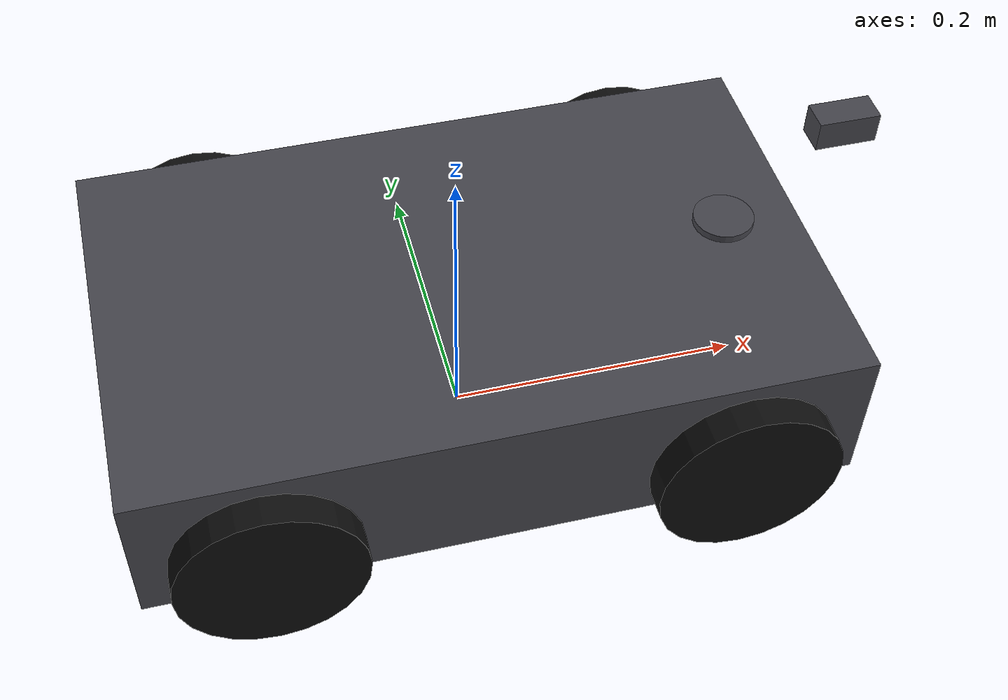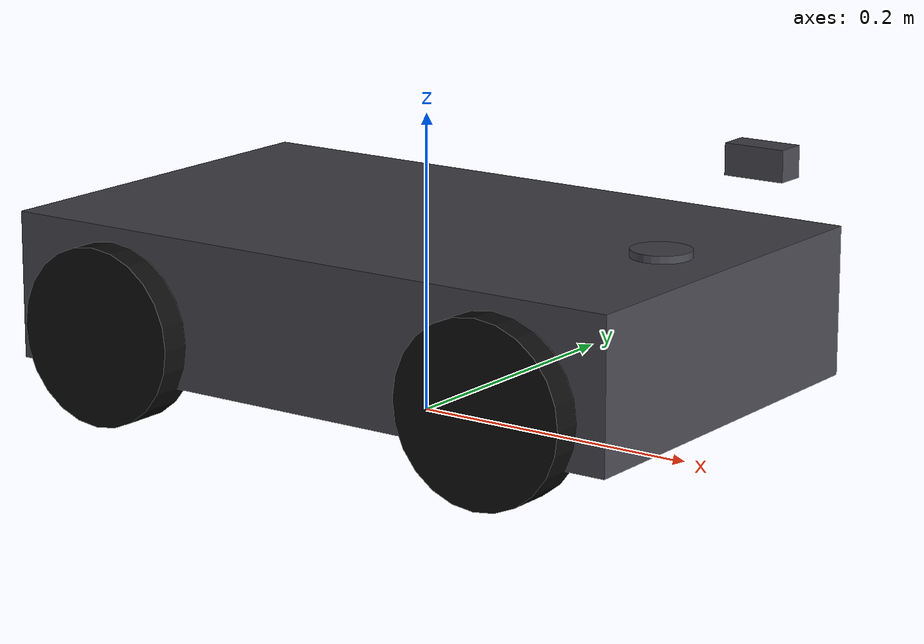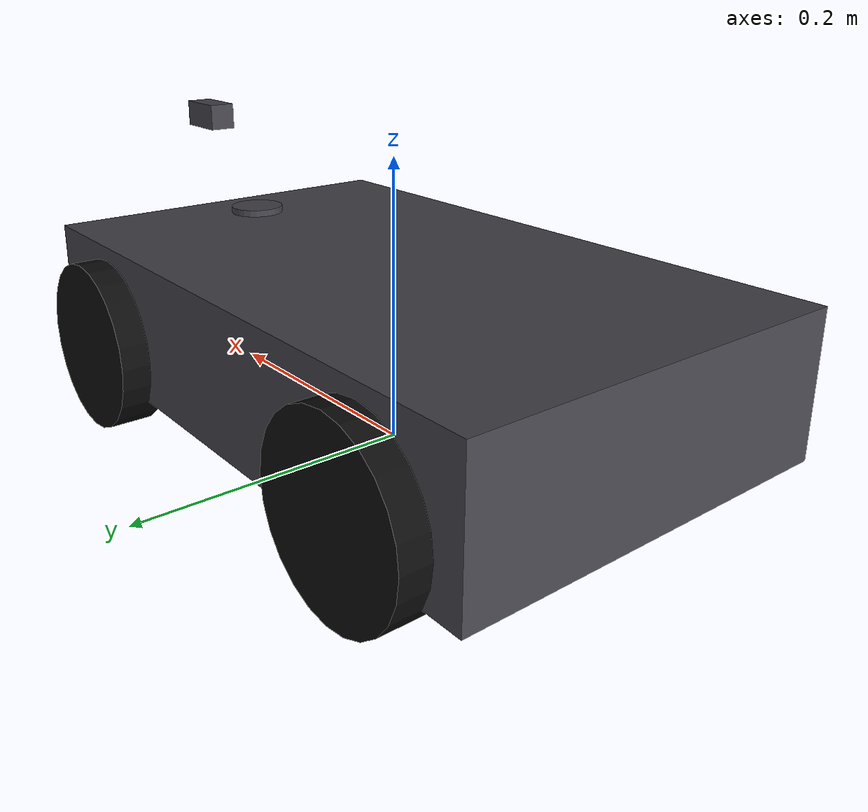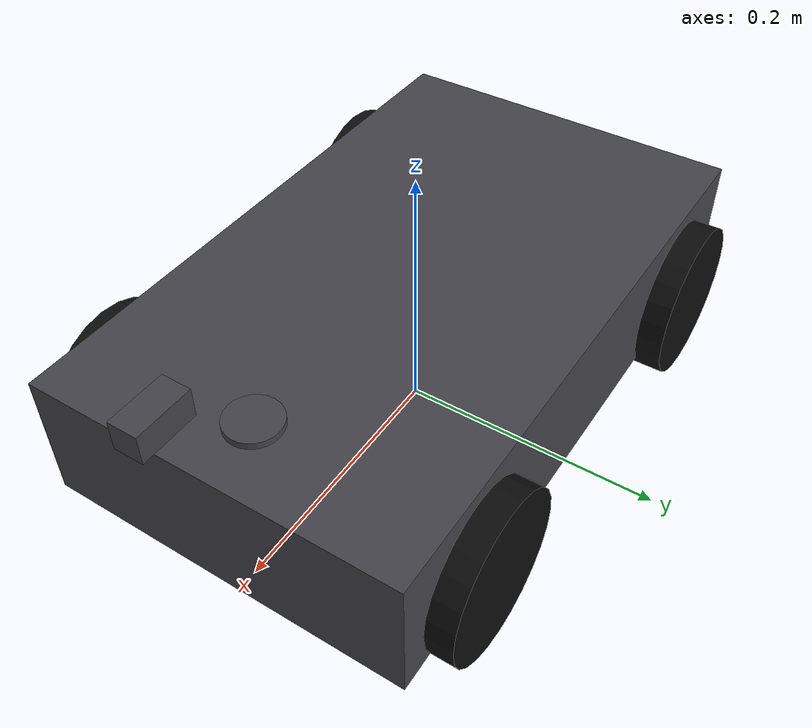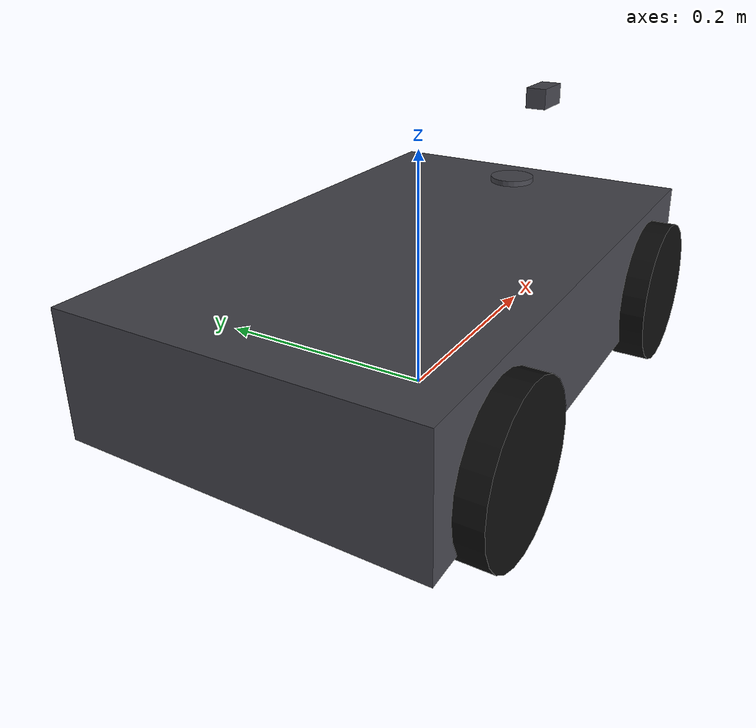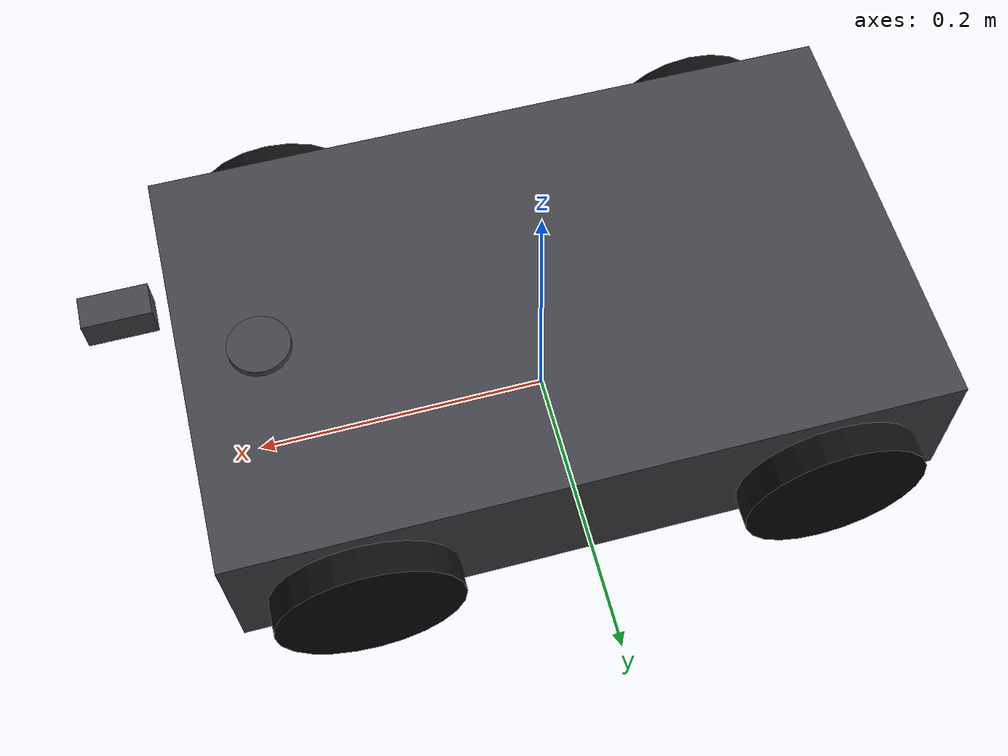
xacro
<?xml version="1.0"?>
<robot name="rc_car" xmlns:xacro="http://www.ros.org/wiki/xacro">
  <xacro:arg name="lidar_noise_std" default="0.0"/>
  <xacro:arg name="imu_gyro_noise_stddev_rps" default="0.002"/>
  <xacro:arg name="imu_accel_noise_stddev_mps2" default="0.02"/>
  <xacro:property name="lidar_noise_std" value="$(arg lidar_noise_std)"/>
  <xacro:property name="imu_gyro_noise_stddev_rps" value="$(arg imu_gyro_noise_stddev_rps)"/>
  <xacro:property name="imu_accel_noise_stddev_mps2" value="$(arg imu_accel_noise_stddev_mps2)"/>
  <!-- Basic dimensions -->
  <xacro:property name="chassis_length" value="0.46"/>
  <xacro:property name="chassis_width" value="0.28"/>
  <xacro:property name="chassis_height" value="0.10"/>
  <xacro:property name="chassis_clearance" value="0.03"/>
  <xacro:property name="wheel_radius" value="0.06"/>
  <xacro:property name="wheel_thickness" value="0.03"/>
  <xacro:property name="wheelbase_m" value="0.30"/>
  <xacro:property name="rear_axle_offset_x" value="-0.15"/>
  <xacro:property name="front_axle_offset_x" value="${rear_axle_offset_x + wheelbase_m}"/>
  <xacro:property name="steering_limit_rad" value="0.3141592654"/>
  <xacro:property name="lidar_offset_x" value="0.18"/>
  <xacro:property name="lidar_offset_z" value="0.12"/>

  <!-- Placement helpers -->
  <xacro:property name="wheel_base_x" value="${front_axle_offset_x}"/>
  <xacro:property name="wheel_track_y" value="${chassis_width / 2.0 + wheel_thickness / 2.0 - 0.01}"/>
  <xacro:property name="axle_height" value="${wheel_radius}"/>

  <!-- Mass and inertia approximations -->
  <xacro:property name="chassis_mass" value="3.0"/>
  <xacro:property name="wheel_mass" value="0.25"/>
  <xacro:property name="steer_mass" value="0.05"/>

  <xacro:property name="chassis_ixx" value="${chassis_mass / 12.0 * (chassis_height*chassis_height + chassis_width*chassis_width)}"/>
  <xacro:property name="chassis_iyy" value="${chassis_mass / 12.0 * (chassis_length*chassis_length + chassis_height*chassis_height)}"/>
  <xacro:property name="chassis_izz" value="${chassis_mass / 12.0 * (chassis_length*chassis_length + chassis_width*chassis_width)}"/>

  <xacro:property name="wheel_ixx" value="${wheel_mass / 12.0 * (3*wheel_radius*wheel_radius + wheel_thickness*wheel_thickness)}"/>
  <xacro:property name="wheel_iyy" value="${wheel_ixx}"/>
  <xacro:property name="wheel_izz" value="${0.5 * wheel_mass * wheel_radius * wheel_radius}"/>

  <!-- Materials -->
  <material name="chassis_grey">
    <color rgba="0.27 0.27 0.3 1.0"/>
  </material>
  <material name="wheel_black">
    <color rgba="0.05 0.05 0.05 1.0"/>
  </material>

  <xacro:macro name="wheel" params="name parent xyz">
    <link name="${name}">
      <inertial>
        <origin xyz="0 0 0" rpy="0 0 0"/>
        <mass value="${wheel_mass}"/>
        <inertia ixx="${wheel_ixx}" ixy="0.0" ixz="0.0" iyy="${wheel_iyy}" iyz="0.0" izz="${wheel_izz}"/>
      </inertial>
      <visual>
        <origin xyz="0 0 0" rpy="0 0 0"/>
        <geometry>
          <cylinder radius="${wheel_radius}" length="${wheel_thickness}"/>
        </geometry>
        <material name="wheel_black"/>
      </visual>
      <collision>
        <origin xyz="0 0 0" rpy="0 0 0"/>
        <geometry>
          <cylinder radius="${wheel_radius}" length="${wheel_thickness}"/>
        </geometry>
      </collision>
    </link>
    <joint name="${name}_joint" type="continuous">
      <parent link="${parent}"/>
      <child link="${name}"/>
      <origin xyz="${xyz}" rpy="1.5708 0 0"/>
      <axis xyz="0 0 -1"/>
    </joint>
    <gazebo reference="${name}">
      <mu1>1.2</mu1>
      <mu2>1.2</mu2>
      <kp>80000.0</kp>
      <kd>20.0</kd>
    </gazebo>
  </xacro:macro>

  <xacro:macro name="steered_wheel" params="name parent xyz">
    <link name="${name}_steer">
      <inertial>
        <origin xyz="0 0 0" rpy="0 0 0"/>
        <mass value="${steer_mass}"/>
        <inertia ixx="0.0002" ixy="0.0" ixz="0.0" iyy="0.0002" iyz="0.0" izz="0.0002"/>
      </inertial>
      <visual>
        <origin xyz="0 0 0" rpy="0 0 0"/>
        <geometry>
          <cylinder radius="0.01" length="0.04"/>
        </geometry>
        <material name="chassis_grey"/>
      </visual>
      <collision>
        <origin xyz="0 0 0" rpy="0 0 0"/>
        <geometry>
          <cylinder radius="0.01" length="0.04"/>
        </geometry>
      </collision>
    </link>
    <joint name="${name}_steer_joint" type="revolute">
      <parent link="${parent}"/>
      <child link="${name}_steer"/>
      <origin xyz="${xyz}" rpy="0 0 0"/>
      <axis xyz="0 0 1"/>
      <limit lower="-${steering_limit_rad}" upper="${steering_limit_rad}" effort="10.0" velocity="3.5"/>
    </joint>
    <xacro:wheel name="${name}" parent="${name}_steer" xyz="0 0 0"/>
  </xacro:macro>

  <link name="base_link">
    <inertial>
      <origin xyz="0 0 ${chassis_height / 2.0 + chassis_clearance}" rpy="0 0 0"/>
      <mass value="${chassis_mass}"/>
      <inertia ixx="${chassis_ixx}" ixy="0.0" ixz="0.0" iyy="${chassis_iyy}" iyz="0.0" izz="${chassis_izz}"/>
    </inertial>
    <visual>
      <origin xyz="0 0 ${chassis_height / 2.0 + chassis_clearance}" rpy="0 0 0"/>
      <geometry>
        <box size="${chassis_length} ${chassis_width} ${chassis_height}"/>
      </geometry>
      <material name="chassis_grey"/>
    </visual>
    <collision>
      <origin xyz="0 0 ${chassis_height / 2.0 + chassis_clearance}" rpy="0 0 0"/>
      <geometry>
        <box size="${chassis_length} ${chassis_width} ${chassis_height}"/>
      </geometry>
    </collision>
  </link>

  <link name="rear_axle">
    <inertial>
      <origin xyz="0 0 0" rpy="0 0 0"/>
      <mass value="0.02"/>
      <inertia ixx="0.00002" ixy="0.0" ixz="0.0" iyy="0.00002" iyz="0.0" izz="0.00002"/>
    </inertial>
  </link>

  <link name="laser">
    <inertial>
      <origin xyz="0 0 0" rpy="0 0 0"/>
      <mass value="0.05"/>
      <inertia ixx="0.0001" ixy="0.0" ixz="0.0" iyy="0.0001" iyz="0.0" izz="0.0001"/>
    </inertial>
    <visual>
      <origin xyz="0 0 0" rpy="0 0 0"/>
      <geometry>
        <cylinder radius="0.02" length="0.03"/>
      </geometry>
      <material name="chassis_grey"/>
    </visual>
  </link>

  <link name="imu_link">
    <inertial>
      <origin xyz="0 0 0" rpy="0 0 0"/>
      <mass value="0.03"/>
      <inertia ixx="0.00005" ixy="0.0" ixz="0.0" iyy="0.00005" iyz="0.0" izz="0.00005"/>
    </inertial>
    <visual>
      <origin xyz="0 0 0" rpy="0 0 0"/>
      <geometry>
        <box size="0.03 0.02 0.01"/>
      </geometry>
      <material name="chassis_grey"/>
    </visual>
  </link>

  <link name="camera_link">
    <inertial>
      <origin xyz="0 0 0" rpy="0 0 0"/>
      <mass value="0.05"/>
      <inertia ixx="0.0001" ixy="0.0" ixz="0.0" iyy="0.0001" iyz="0.0" izz="0.0001"/>
    </inertial>
    <visual>
      <origin xyz="0 0 0" rpy="0 0 0"/>
      <geometry>
        <box size="0.04 0.02 0.02"/>
      </geometry>
      <material name="chassis_grey"/>
    </visual>
  </link>

  <joint name="rear_axle_joint" type="fixed">
    <parent link="base_link"/>
    <child link="rear_axle"/>
    <origin xyz="${rear_axle_offset_x} 0 ${axle_height}" rpy="0 0 0"/>
  </joint>

  <joint name="lidar_joint" type="fixed">
    <parent link="base_link"/>
    <child link="laser"/>
    <origin xyz="${lidar_offset_x} 0 ${lidar_offset_z}" rpy="0 0 0"/>
  </joint>

  <joint name="imu_joint" type="fixed">
    <parent link="base_link"/>
    <child link="imu_link"/>
    <!-- Match the real APEX planar mount: sensor Y points forward, so the
         kinematics estimator's planar_mount_yaw_deg=-90 rotates back into
         vehicle-forward X. -->
    <origin xyz="0.02 0 ${chassis_height / 2.0 + 0.03}" rpy="0 0 1.57079632679"/>
  </joint>

  <joint name="camera_joint" type="fixed">
    <parent link="base_link"/>
    <child link="camera_link"/>
    <origin xyz="0.25 0.0 0.20" rpy="0 0 0"/>
  </joint>

  <gazebo reference="laser">
    <sensor name="lidar" type="gpu_lidar">
      <always_on>true</always_on>
      <update_rate>12</update_rate>
      <visualize>true</visualize>
      <topic>/apex/sim/scan</topic>
      <gz_frame_id>laser</gz_frame_id>
      <lidar>
        <scan>
          <horizontal>
            <samples>360</samples>
            <resolution>1</resolution>
            <min_angle>-3.14159265</min_angle>
            <max_angle>3.14159265</max_angle>
          </horizontal>
        </scan>
        <range>
          <min>0.05</min>
          <max>12.0</max>
          <resolution>0.01</resolution>
        </range>
        <!-- Optional light LiDAR noise for robustness sweeps. Default stays at
             zero so the baseline ideal scan remains perfectly reproducible. -->
        <noise type="gaussian">
          <mean>0.0</mean>
          <stddev>${lidar_noise_std}</stddev>
        </noise>
      </lidar>
    </sensor>
  </gazebo>

  <gazebo reference="imu_link">
    <sensor name="imu" type="imu">
      <always_on>true</always_on>
      <update_rate>120</update_rate>
      <topic>/apex/sim/imu</topic>
      <imu>
        <angular_velocity>
          <x>
            <noise type="gaussian">
              <mean>0.0</mean>
              <stddev>${imu_gyro_noise_stddev_rps}</stddev>
            </noise>
          </x>
          <y>
            <noise type="gaussian">
              <mean>0.0</mean>
              <stddev>${imu_gyro_noise_stddev_rps}</stddev>
            </noise>
          </y>
          <z>
            <noise type="gaussian">
              <mean>0.0</mean>
              <stddev>${imu_gyro_noise_stddev_rps}</stddev>
            </noise>
          </z>
        </angular_velocity>
        <linear_acceleration>
          <x>
            <noise type="gaussian">
              <mean>0.0</mean>
              <stddev>${imu_accel_noise_stddev_mps2}</stddev>
            </noise>
          </x>
          <y>
            <noise type="gaussian">
              <mean>0.0</mean>
              <stddev>${imu_accel_noise_stddev_mps2}</stddev>
            </noise>
          </y>
          <z>
            <noise type="gaussian">
              <mean>0.0</mean>
              <stddev>${imu_accel_noise_stddev_mps2}</stddev>
            </noise>
          </z>
        </linear_acceleration>
      </imu>
    </sensor>
  </gazebo>

  <gazebo reference="camera_link">
    <sensor name="camera" type="camera">
      <always_on>true</always_on>
      <update_rate>30</update_rate>
      <visualize>false</visualize>
      <topic>/camera/image_raw</topic>
      <camera>
        <horizontal_fov>1.047</horizontal_fov>
        <image>
          <width>640</width>
          <height>480</height>
          <format>R8G8B8</format>
        </image>
        <clip>
          <near>0.05</near>
          <far>50.0</far>
        </clip>
      </camera>
    </sensor>
  </gazebo>

  <xacro:steered_wheel name="front_left_wheel" parent="base_link" xyz="${wheel_base_x} ${wheel_track_y} ${axle_height}"/>
  <xacro:steered_wheel name="front_right_wheel" parent="base_link" xyz="${wheel_base_x} ${-wheel_track_y} ${axle_height}"/>
  <xacro:wheel name="rear_left_wheel" parent="base_link" xyz="${-wheel_base_x} ${wheel_track_y} ${axle_height}"/>
  <xacro:wheel name="rear_right_wheel" parent="base_link" xyz="${-wheel_base_x} ${-wheel_track_y} ${axle_height}"/>

  <gazebo reference="base_link">
    <material>Gazebo/Grey</material>
    <mu1>1.4</mu1>
    <mu2>1.35</mu2>
    <kp>100000.0</kp>
    <kd>25.0</kd>
  </gazebo>

  <gazebo>
    <plugin
      filename="gz-sim-joint-state-publisher-system"
      name="gz::sim::systems::JointStatePublisher">
    </plugin>
    <plugin
      filename="gz-sim-pose-publisher-system"
      name="gz::sim::systems::PosePublisher">
      <publish_link_pose>true</publish_link_pose>
      <use_pose_vector_msg>true</use_pose_vector_msg>
      <static_publisher>true</static_publisher>
      <static_update_frequency>1</static_update_frequency>
    </plugin>
    <plugin
      filename="gz-sim-joint-controller-system"
      name="gz::sim::systems::JointController">
      <joint_name>rear_left_wheel_joint</joint_name>
    </plugin>
    <plugin
      filename="gz-sim-joint-controller-system"
      name="gz::sim::systems::JointController">
      <joint_name>rear_right_wheel_joint</joint_name>
    </plugin>
    <plugin
      filename="gz-sim-joint-position-controller-system"
      name="gz::sim::systems::JointPositionController">
      <joint_name>front_left_wheel_steer_joint</joint_name>
      <topic>/model/rc_car/joint/front_left_wheel_steer_joint/cmd_pos</topic>
      <p_gain>28.0</p_gain>
      <i_gain>0.2</i_gain>
      <d_gain>0.7</d_gain>
      <cmd_max>${steering_limit_rad}</cmd_max>
      <cmd_min>-${steering_limit_rad}</cmd_min>
    </plugin>
    <plugin
      filename="gz-sim-joint-position-controller-system"
      name="gz::sim::systems::JointPositionController">
      <joint_name>front_right_wheel_steer_joint</joint_name>
      <topic>/model/rc_car/joint/front_right_wheel_steer_joint/cmd_pos</topic>
      <p_gain>28.0</p_gain>
      <i_gain>0.2</i_gain>
      <d_gain>0.7</d_gain>
      <cmd_max>${steering_limit_rad}</cmd_max>
      <cmd_min>-${steering_limit_rad}</cmd_min>
    </plugin>
  </gazebo>
</robot>
